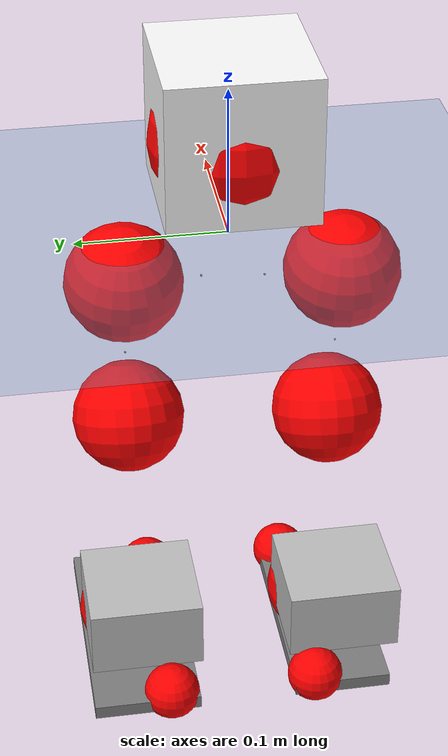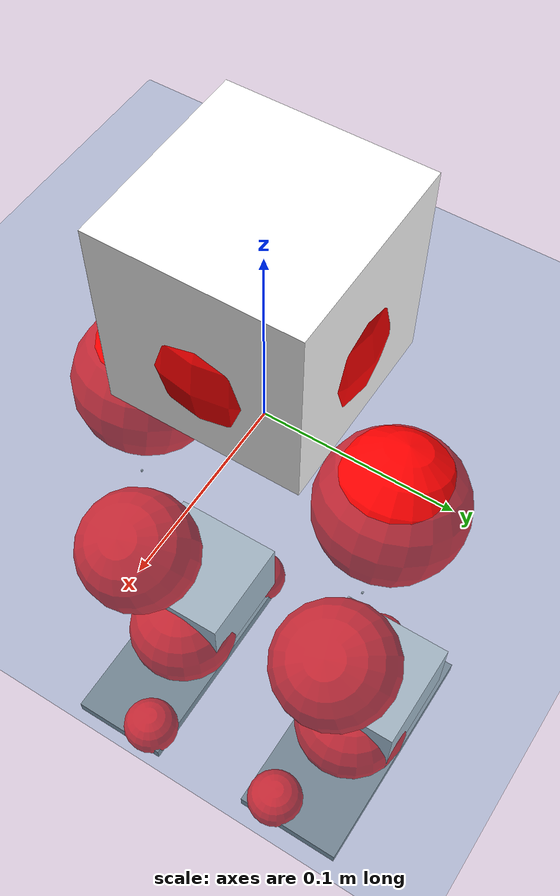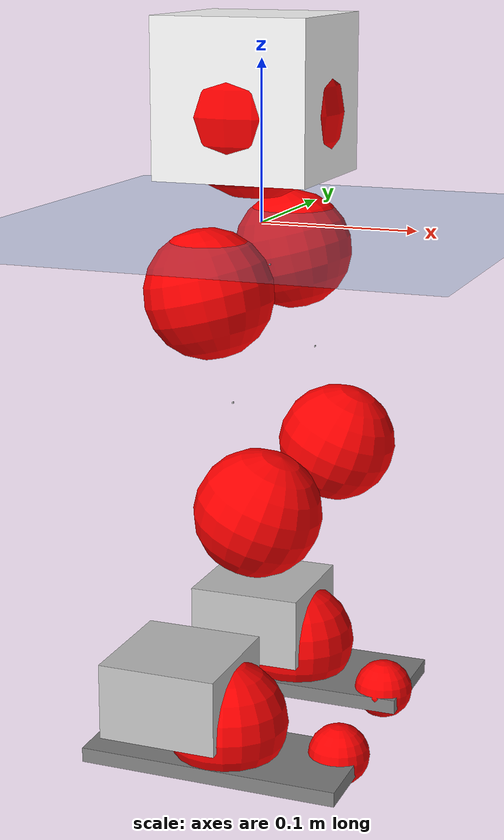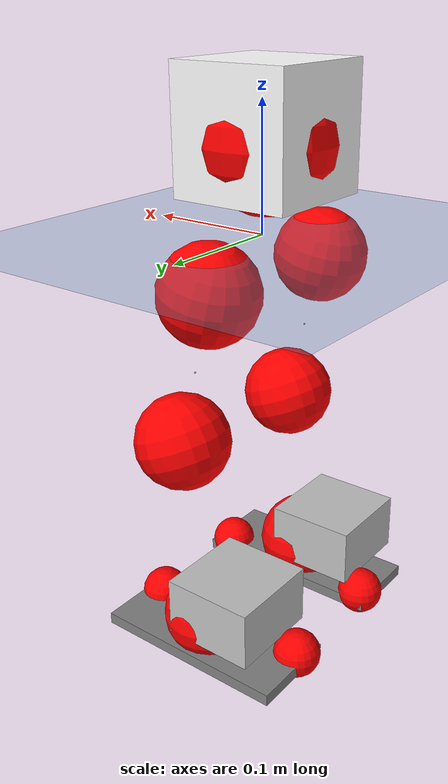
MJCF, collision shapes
<mujoco model="pi_12dof_release_v1">
  <compiler angle="radian" assetdir="assets" balanceinertia="true" inertiafromgeom="false"/>

  <option timestep="0.005" density="1.2" viscosity="2e-05"/>

  <size nkey="1"/>

  <visual>
    <quality shadowsize="8192"/>
    <map shadowclip="0.5"/>
  </visual>

  <default>
    <default class="/">
      <joint armature="0.01" damping="0.01" frictionloss="0.01"/>
      <geom contype="0" conaffinity="0" group="1" solref="-1000 -80"/>
      <site size="0.01 0.005 0.005" group="5"/>
      <general forcelimited="true" biastype="affine" gainprm="20" biasprm="0 -20 -0.5"/>
      <default class="foot">
        <geom size="0.0845 0.036 0.005" type="box" condim="6" group="4" priority="1" friction="0.9 0.2 0.2" solimp="0.015 1 0.005"/>
      </default>
      <default class="reward_collision_sphere">
        <geom group="5" rgba="1 0 0 1"/>
      </default>
    </default>
  </default>

  <asset>
    <texture type="skybox" colorspace="auto" name="//unnamed_texture_0" builtin="gradient" rgb1="0.95 0.95 0.95" rgb2="0.95 0.95 0.95" width="100" height="600"/>
    <texture type="2d" colorspace="auto" name="texplane" builtin="checker" rgb1="0.345 0.575 0.748" rgb2="0.345 0.575 0.748" markrgb="1 1 1" width="512" height="512"/>
    <material name="MatPlane" class="/" texture="texplane" texuniform="true" texrepeat="2 2" specular="0.9"/>
    <mesh name="baselink_1" class="/" file="baselink_1.STL"/>
    <mesh name="r_hip_pitch_link" class="/" file="r_hip_pitch_link.STL"/>
    <mesh name="r_hip_roll_link" class="/" file="r_hip_roll_link.STL"/>
    <mesh name="r_thigh_link" class="/" file="r_thigh_link.STL"/>
    <mesh name="r_calf_link" class="/" file="r_calf_link.STL"/>
    <mesh name="r_ankle_pitch_link" class="/" file="r_ankle_pitch_link.STL"/>
    <mesh name="r_ankle_roll_link" class="/" file="r_ankle_roll_link.STL"/>
    <mesh name="l_hip_pitch_link" class="/" file="l_hip_pitch_link.STL"/>
    <mesh name="l_hip_roll_link" class="/" file="l_hip_roll_link.STL"/>
    <mesh name="l_thigh_link" class="/" file="l_thigh_link.STL"/>
    <mesh name="l_calf_link" class="/" file="l_calf_link.STL"/>
    <mesh name="l_ankle_pitch_link" class="/" file="l_ankle_pitch_link.STL"/>
    <mesh name="l_ankle_roll_link" class="/" file="l_ankle_roll_link.STL"/>
  </asset>

  <worldbody>
    <geom name="floor" class="/" size="100 100 0.125" type="plane" group="0" material="MatPlane"/>
    <light name="toplight_shadow" class="/" pos="0 0 5" dir="0.0990148 0.0990148 -0.990148" type="directional" ambient="0.04 0.04 0.04" diffuse="0.55 0.55 0.55" specular="0.12 0.12 0.12"/>
    <light name="toplight_fill" class="/" pos="0 0 5" dir="0.0990148 0.0990148 -0.990148" type="directional" castshadow="false" ambient="0.04 0.04 0.04" diffuse="0.3 0.3 0.3" specular="0.08 0.08 0.08"/>
    <body name="trunk" pos="-0.00272284 -0.00193182 0.000321614" quat="0.999999 0.00076458 0.000970273 -3.8498e-05">
      <inertial pos="-0.000226221 0.000501092 0.0387258" quat="0.6955 0.010145 0.00758975 0.718414" mass="1.9691" diaginertia="0.0127533 0.00530974 0.00368803"/>
      <joint name="//unnamed_joint_0" type="free"/>
      <geom name="//unnamed_geom_1" class="/" type="mesh" density="0" rgba="1 1 1 1" mesh="baselink_1"/>
      <geom name="//unnamed_geom_2" class="/" size="0.0487174 0.0487174 0.0487174" pos="0 0 0.0776334" type="box" rgba="1 1 1 1"/>
      <geom name="//unnamed_geom_3" class="reward_collision_sphere" size="0.0535891" pos="0 0 0.0679292"/>
      <site name="imu" class="/" pos="0.002578 -0.00259671 0.00503317" size="0.00974347"/>
      <camera name="track" class="/" pos="0 -1.79988 0" quat="0.707107 0.707107 0 0" mode="trackcom"/>
      <camera name="ego_camera" class="/" pos="0.0789515 0 0.174675" quat="-0.5 -0.5 0.5 0.5"/>
      <body name="r_hip_pitch_link" pos="-0.0012365 -0.0212394 -0.0316145" quat="0.992222 -0.000702145 -0.124477 0.00111787">
        <inertial pos="-0.00155784 -0.0518969 -0.000186259" quat="-0.0212178 0.70534 -0.0280825 0.707995" mass="0.355936" diaginertia="0.000146429 5.7761e-05 7.46773e-05"/>
        <joint name="r_hip_pitch_joint" class="/" pos="0 0 0" axis="-0.00287739 -0.999991 -0.00322311" range="-1.74908 1.23332" armature="0.00970079" damping="0.0113853" frictionloss="0.0107222"/>
        <geom name="//unnamed_geom_4" class="/" type="mesh" density="0" rgba="0.75294 0.75294 0.75294 1" mesh="r_hip_pitch_link"/>
        <geom name="//unnamed_geom_5" class="/" size="0.000487174 0.000487174 0.000487174" type="box" rgba="0.75294 0.75294 0.75294 1"/>
        <body name="r_hip_roll_link" pos="-0.000729905 -0.0513033 -0.000102612" quat="1 -6.38122e-05 8.24295e-06 3.11144e-05">
          <inertial pos="0.00111764 -1.87191e-05 -0.0568698" quat="0.707003 -0.0791083 -0.0822612 0.697941" mass="0.362859" diaginertia="0.000430449 0.000161519 0.000110662"/>
          <joint name="r_hip_roll_joint" class="/" pos="0 0 0" axis="-1 0.00013349 0.000163317" stiffness="0.0062155" range="-0.170489 0.506889" armature="0.00831727" damping="0" frictionloss="0.0100116"/>
          <geom name="//unnamed_geom_6" class="/" type="mesh" density="0" rgba="0.75294 0.75294 0.75294 1" mesh="r_hip_roll_link"/>
          <geom name="//unnamed_geom_7" class="/" size="0.000487174 0.000487174 0.000487174" type="box" rgba="0.75294 0.75294 0.75294 1"/>
          <geom name="//unnamed_geom_8" class="reward_collision_sphere" size="0.0389739"/>
          <body name="r_thigh_link" pos="-0.00128288 -0.000401421 -0.0664015" quat="1 0.000529042 -0.000256061 -0.000575515">
            <inertial pos="0.00154682 0.00114177 -0.0481813" quat="0.736039 0.676809 0.0124746 -0.0045562" mass="0.103073" diaginertia="0.000163215 5.63396e-05 4.8824e-05"/>
            <joint name="r_thigh_joint" class="/" pos="0 0 0" axis="0.00951248 0.00108735 -0.999954" range="-0.306606 0.625944" armature="0.00844814" damping="0.00332683" frictionloss="0.00953213"/>
            <geom name="//unnamed_geom_9" class="/" type="mesh" density="0" rgba="0.75294 0.75294 0.75294 1" mesh="r_thigh_link"/>
            <geom name="//unnamed_geom_10" class="/" size="0.000487174 0.000487174 0.000487174" type="box" rgba="0.75294 0.75294 0.75294 1"/>
            <body name="r_calf_link" pos="-0.00123178 0.000469277 -0.068786" quat="0.947653 0.000117703 0.319302 -4.53168e-05">
              <inertial pos="0.00193444 -0.00174243 -0.067758" quat="0.999978 -0.00469922 -0.001923 0.00415526" mass="0.793642" diaginertia="0.00470269 0.00214274 0.000150878"/>
              <joint name="r_calf_joint" class="/" pos="0 0 0" axis="0.000117624 -0.999996 0.00296306" stiffness="0.0111573" range="-1.65967 0.594877" armature="0.0111395" damping="0" frictionloss="0.0110197"/>
              <geom name="//unnamed_geom_11" class="/" type="mesh" density="0" rgba="0.75294 0.75294 0.75294 1" mesh="r_calf_link"/>
              <geom name="//unnamed_geom_12" class="/" size="0.000487174 0.000487174 0.000487174" type="box" rgba="0.75294 0.75294 0.75294 1"/>
              <geom name="//unnamed_geom_13" class="reward_collision_sphere" size="0.0389739"/>
              <body name="r_ankle_pitch_link" pos="-0.000850997 0.00161535 -0.133192" quat="0.980238 0.000213553 -0.197818 0.00109462">
                <inertial pos="0.00295219 0.000711442 0.000651385" quat="0.00446161 0.708359 -0.00286198 0.705832" mass="0.158462" diaginertia="0.000399545 0.000131738 0.000100613"/>
                <joint name="r_ankle_pitch_joint" class="/" pos="0 0 0" axis="-0.00138065 -0.999901 0.0139781" range="-1.34632 0.547619" armature="0.0101919" damping="0.00718452" frictionloss="0.00885962"/>
                <geom name="//unnamed_geom_14" class="/" type="mesh" density="0" rgba="0.75294 0.75294 0.75294 1" mesh="r_ankle_pitch_link"/>
                <geom name="//unnamed_geom_15" class="/" size="0.0379995 0.0389739 0.0243587" type="box" rgba="0.75294 0.75294 0.75294 1"/>
                <body name="r_ankle_roll_link" pos="0.0823602 0.00371914 -0.000107727" quat="1 5.08787e-05 -1.32587e-05 -7.49096e-05">
                  <inertial pos="-0.0240401 0.000198252 -0.0132263" quat="0.557433 0.431511 0.434537 0.560575" mass="0.488565" diaginertia="0.00155829 0.000611796 0.000253154"/>
                  <joint name="r_ankle_roll_joint" class="/" pos="0 0 0" axis="-0.999926 0.00176134 0.0120591" range="-0.151712 0.100146" armature="0.00914979" damping="0" frictionloss="0.00986998"/>
                  <geom name="//unnamed_geom_16" class="/" type="mesh" density="0" rgba="0.75294 0.75294 0.75294 1" mesh="r_ankle_roll_link"/>
                  <geom name="//unnamed_geom_17" class="/" type="mesh" rgba="0.75294 0.75294 0.75294 1" mesh="r_ankle_roll_link"/>
                  <geom name="right_foot" class="foot" size="0.0837078 0.0337733 0.0047016" pos="-0.053687 0 -0.0426983"/>
                  <geom name="//unnamed_geom_19" class="reward_collision_sphere" size="0.0389739" pos="-0.0526343 0 -0.0194083"/>
                  <geom name="//unnamed_geom_20" class="reward_collision_sphere" size="0.0194869" pos="0.0157903 0.0179988 -0.0388167"/>
                  <geom name="//unnamed_geom_21" class="reward_collision_sphere" size="0.0194869" pos="-0.126322 0.0179988 -0.0388167"/>
                  <site name="right_foot" class="foot" pos="-0.053687 0 -0.0426983" size="0.00974347"/>
                </body>
              </body>
            </body>
          </body>
        </body>
      </body>
      <body name="l_hip_pitch_link" pos="0.00144642 0.020029 -0.0302892" quat="0.992187 0.000743985 -0.124758 -0.000863633">
        <inertial pos="0.00359131 0.0496202 0.000460059" quat="-0.0387045 0.705746 0.0289922 0.706812" mass="0.357903" diaginertia="0.000167165 6.40955e-05 8.8371e-05"/>
        <joint name="l_hip_pitch_joint" class="/" pos="0 0 0" axis="0.00130617 0.999988 0.00463039" range="-1.22345 1.76447" armature="0.0108507" damping="0" frictionloss="0.00970158"/>
        <geom name="//unnamed_geom_22" class="/" type="mesh" density="0" rgba="0.75294 0.75294 0.75294 1" mesh="l_hip_pitch_link"/>
        <geom name="//unnamed_geom_23" class="/" size="0.000487174 0.000487174 0.000487174" type="box" rgba="0.75294 0.75294 0.75294 1"/>
        <body name="l_hip_roll_link" pos="-0.00265233 0.0509179 0.00223629" quat="0.999999 -3.93493e-05 -0.00127603 -0.000490228">
          <inertial pos="-0.00155275 0.000236512 -0.0582604" quat="0.695533 -0.0720138 -0.0901158 0.709173" mass="0.347602" diaginertia="0.000425246 0.000158912 0.000109516"/>
          <joint name="l_hip_roll_joint" class="/" pos="0 0 0" axis="-0.999999 0.00120976 0.00120596" stiffness="0.00978855" range="-0.4836 0.121582" armature="0.0108408" damping="0" frictionloss="0.00998914"/>
          <geom name="//unnamed_geom_24" class="/" type="mesh" density="0" rgba="0.75294 0.75294 0.75294 1" mesh="l_hip_roll_link"/>
          <geom name="//unnamed_geom_25" class="/" size="0.000487174 0.000487174 0.000487174" type="box" rgba="0.75294 0.75294 0.75294 1"/>
          <geom name="//unnamed_geom_26" class="reward_collision_sphere" size="0.0389739"/>
          <body name="l_thigh_link" pos="-0.000277508 -0.00108837 -0.0664936" quat="1 3.88775e-05 8.07155e-06 0.000202589">
            <inertial pos="0.000663312 -0.00151104 -0.0451283" quat="0.67522 0.737617 -2.15264e-05 -0.000221575" mass="0.103571" diaginertia="0.000161784 5.61126e-05 4.94279e-05"/>
            <joint name="l_thigh_joint" class="/" pos="0 0 0" axis="-0.00468432 0.0033541 -0.999983" range="-0.597478 0.315181" armature="0.00924442" damping="0.000696109" frictionloss="0.0100274"/>
            <geom name="//unnamed_geom_27" class="/" type="mesh" density="0" rgba="0.75294 0.75294 0.75294 1" mesh="l_thigh_link"/>
            <geom name="//unnamed_geom_28" class="/" size="0.000487174 0.000487174 0.000487174" type="box" rgba="0.75294 0.75294 0.75294 1"/>
            <body name="l_calf_link" pos="0.000508762 -0.00252203 -0.0659898" quat="0.947557 -0.000813862 0.319585 0.000728081">
              <inertial pos="0.000202919 0.00498962 -0.0686039" quat="0.999826 0.0134548 -0.00564287 0.011626" mass="0.747932" diaginertia="0.00459555 0.00209496 0.000150016"/>
              <joint name="l_calf_joint" class="/" pos="0 0 0" axis="-0.00393746 0.999992 0.000512051" stiffness="0.000764277" range="-0.630641 1.64023" armature="0.00845418" damping="0.00714776" frictionloss="0.0110634"/>
              <geom name="//unnamed_geom_29" class="/" type="mesh" density="0" rgba="0.75294 0.75294 0.75294 1" mesh="l_calf_link"/>
              <geom name="//unnamed_geom_30" class="/" size="0.000487174 0.000487174 0.000487174" type="box" rgba="0.75294 0.75294 0.75294 1"/>
              <geom name="//unnamed_geom_31" class="reward_collision_sphere" size="0.0389739"/>
              <body name="l_ankle_pitch_link" pos="0.00102128 0.000789466 -0.138585" quat="0.980055 7.9602e-05 -0.198726 2.607e-05">
                <inertial pos="0.004875 -0.00145662 0.000405426" quat="-0.00127277 0.706153 0.00246165 0.708054" mass="0.162857" diaginertia="0.000400636 0.000132128 0.000100169"/>
                <joint name="l_ankle_pitch_joint" class="/" pos="0 0 0" axis="0.00129033 0.999992 -0.00377885" stiffness="0.00186567" range="-0.482416 1.30645" armature="0.00971289" damping="0.00552426" frictionloss="0.00972012"/>
                <geom name="//unnamed_geom_32" class="/" type="mesh" density="0" rgba="0.75294 0.75294 0.75294 1" mesh="l_ankle_pitch_link"/>
                <geom name="//unnamed_geom_33" class="/" size="0.0379995 0.0389739 0.0243587" type="box" rgba="0.75294 0.75294 0.75294 1"/>
                <body name="l_ankle_roll_link" pos="0.0770789 0.0030334 6.22882e-05" quat="1 -0.0004374 0.000343605 0.000191614">
                  <inertial pos="-0.0229285 -0.00113893 -0.0132324" quat="0.559046 0.43045 0.435516 0.559023" mass="0.478872" diaginertia="0.00142982 0.000572986 0.000240651"/>
                  <joint name="l_ankle_roll_joint" class="/" pos="0 0 0" axis="-0.999914 0.00259373 -0.0128658" range="-0.133561 0.150071" armature="0.00991836" damping="0.0128955" frictionloss="0.00922724"/>
                  <geom name="//unnamed_geom_34" class="/" type="mesh" density="0" rgba="0.75294 0.75294 0.75294 1" mesh="l_ankle_roll_link"/>
                  <geom name="//unnamed_geom_35" class="/" type="mesh" rgba="0.75294 0.75294 0.75294 1" mesh="l_ankle_roll_link"/>
                  <geom name="left_foot" class="foot" size="0.0830055 0.0371089 0.00482536" pos="-0.053687 0 -0.0426983"/>
                  <geom name="//unnamed_geom_37" class="reward_collision_sphere" size="0.0389739" pos="-0.0526343 0 -0.0194083"/>
                  <geom name="//unnamed_geom_38" class="reward_collision_sphere" size="0.0194869" pos="0.0157903 -0.0179988 -0.0388167"/>
                  <geom name="//unnamed_geom_39" class="reward_collision_sphere" size="0.0194869" pos="-0.126322 -0.0179988 -0.0388167"/>
                  <site name="left_foot" class="foot" pos="-0.053687 0 -0.0426983" size="0.00974347"/>
                </body>
              </body>
            </body>
          </body>
        </body>
      </body>
    </body>
  </worldbody>

  <contact>
    <pair class="/" geom1="floor" geom2="right_foot" name="//unnamed_contact_1"/>
    <pair class="/" geom1="floor" geom2="left_foot" name="//unnamed_contact_0"/>
  </contact>

  <actuator>
    <general name="r_hip_pitch_joint" class="/" joint="r_hip_pitch_joint" forcerange="-21.3012 21.3012" gainprm="19.212" biasprm="0 -19.212 -0.479576"/>
    <general name="r_hip_roll_joint" class="/" joint="r_hip_roll_joint" forcerange="-20.3502 20.3502" gainprm="19.212" biasprm="0 -19.212 -0.479576"/>
    <general name="r_thigh_joint" class="/" joint="r_thigh_joint" forcerange="-20.7023 20.7023" gainprm="19.212" biasprm="0 -19.212 -0.479576"/>
    <general name="r_calf_joint" class="/" joint="r_calf_joint" forcerange="-21.1605 21.1605" gainprm="19.212" biasprm="0 -19.212 -0.479576"/>
    <general name="r_ankle_pitch_joint" class="/" joint="r_ankle_pitch_joint" forcerange="-19.653 19.653" gainprm="19.212" biasprm="0 -19.212 -0.479576"/>
    <general name="r_ankle_roll_joint" class="/" joint="r_ankle_roll_joint" forcerange="-21.2205 21.2205" gainprm="19.212" biasprm="0 -19.212 -0.479576"/>
    <general name="l_hip_pitch_joint" class="/" joint="l_hip_pitch_joint" forcerange="-20.1177 20.1177" gainprm="19.212" biasprm="0 -19.212 -0.479576"/>
    <general name="l_hip_roll_joint" class="/" joint="l_hip_roll_joint" forcerange="-19.9714 19.9714" gainprm="19.212" biasprm="0 -19.212 -0.479576"/>
    <general name="l_thigh_joint" class="/" joint="l_thigh_joint" forcerange="-20.4578 20.4578" gainprm="19.212" biasprm="0 -19.212 -0.479576"/>
    <general name="l_calf_joint" class="/" joint="l_calf_joint" forcerange="-22.45 22.45" gainprm="19.212" biasprm="0 -19.212 -0.479576"/>
    <general name="l_ankle_pitch_joint" class="/" joint="l_ankle_pitch_joint" forcerange="-20.2758 20.2758" gainprm="19.212" biasprm="0 -19.212 -0.479576"/>
    <general name="l_ankle_roll_joint" class="/" joint="l_ankle_roll_joint" forcerange="-18.7753 18.7753" gainprm="19.212" biasprm="0 -19.212 -0.479576"/>
  </actuator>

  <sensor>
    <gyro site="imu" name="imu_angular_velocity"/>
    <velocimeter site="imu" name="imu_linear_velocity"/>
    <framelinvel objtype="site" objname="left_foot" name="left_foot_global_linear_velocity"/>
    <framelinvel objtype="site" objname="right_foot" name="right_foot_global_linear_velocity"/>
  </sensor>

  <keyframe>
    <key name="home" qpos="0 0 0.291 1 0 0 0 0.4 0 0 -0.8 0.4 0 -0.4 0 0 0.8 -0.4 0"/>
  </keyframe>
</mujoco>
